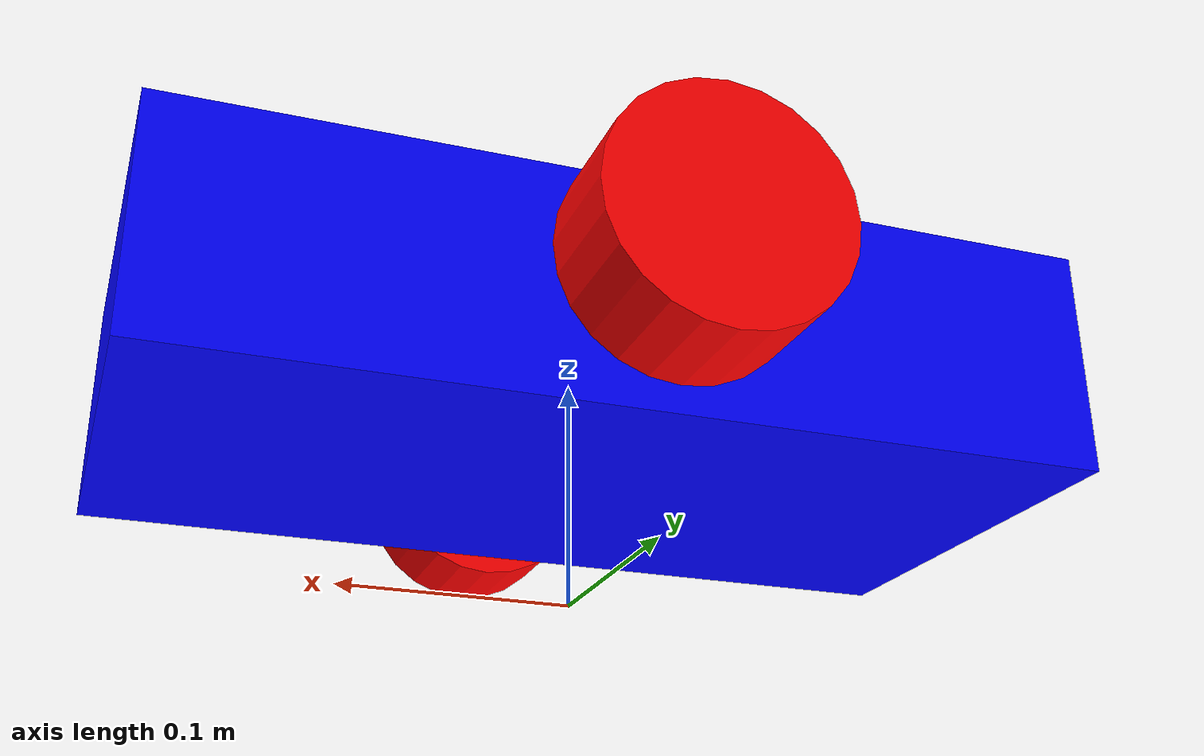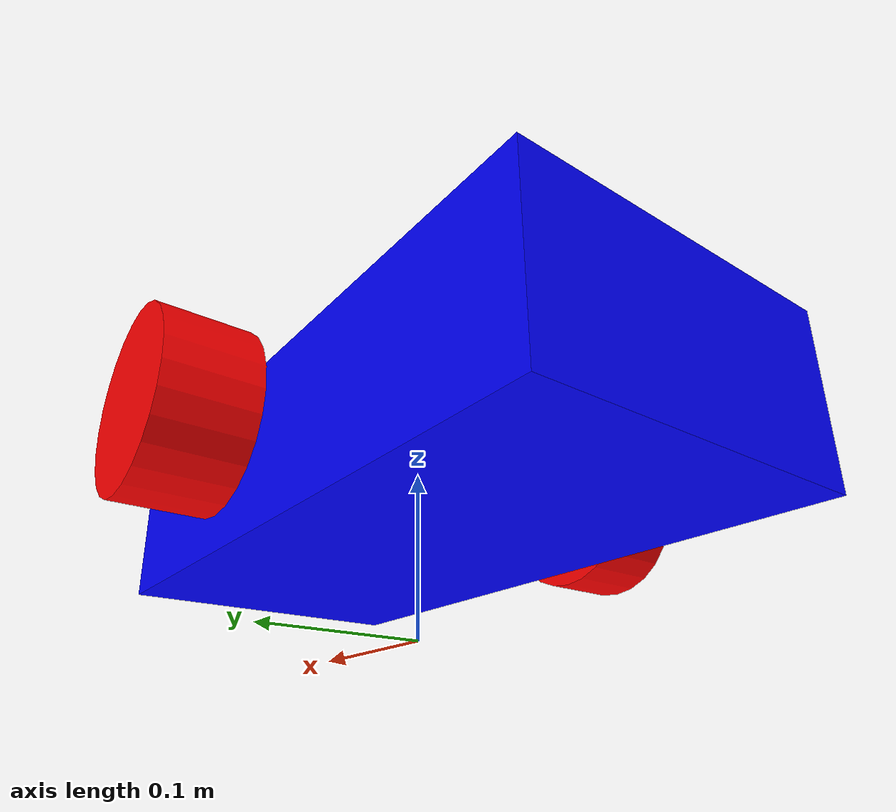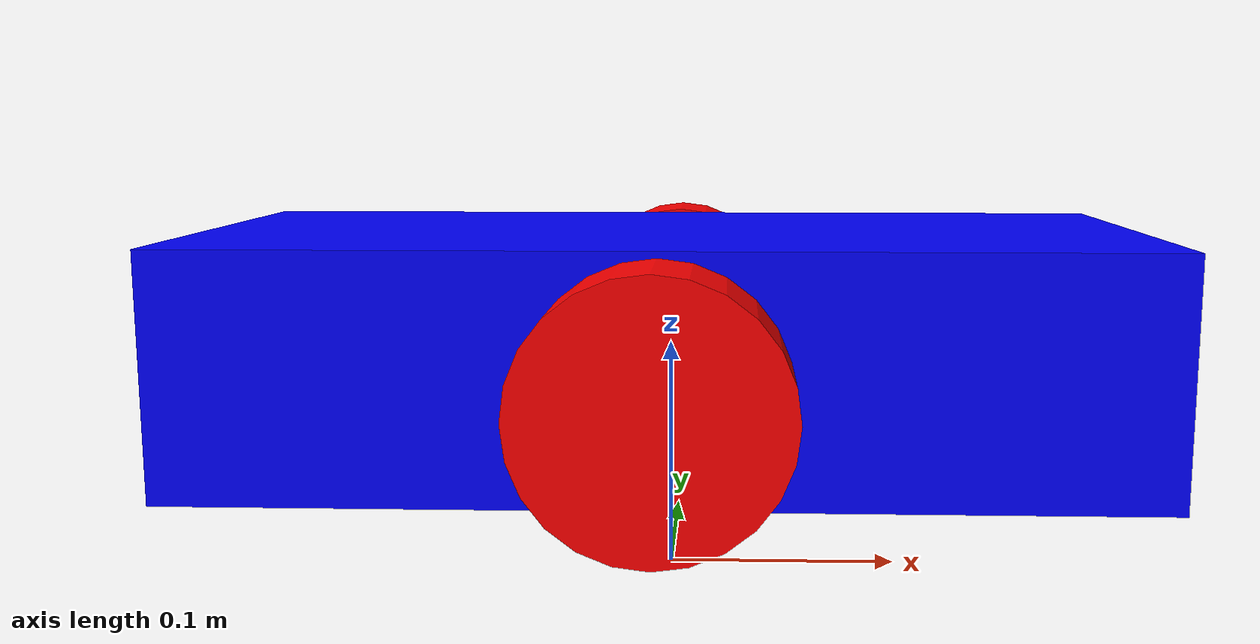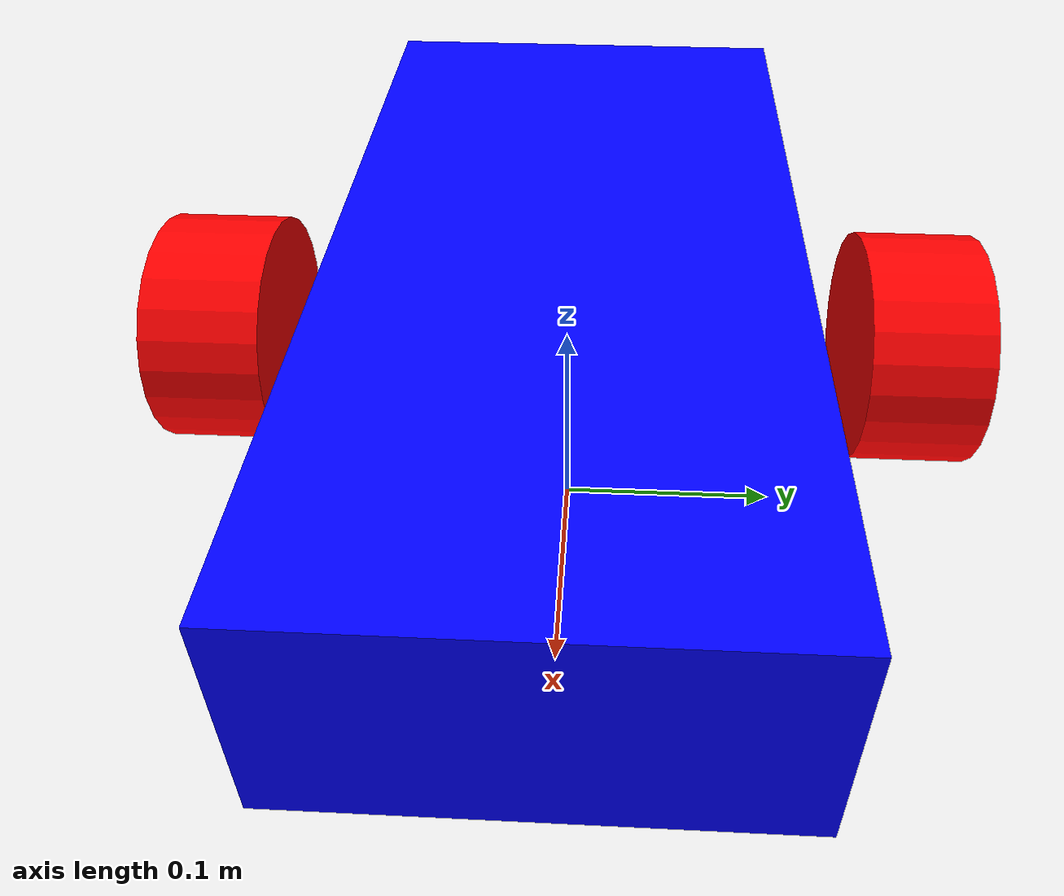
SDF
<?xml version="1.0" ?>
<sdf version="1.8">
  <model name="simple_robot">
    <pose>0 0 0.1 0 0 0</pose>

    <link name="base_link">
      <inertial>
        <mass>1.0</mass>
        <inertia>
          <ixx>0.1</ixx>
          <iyy>0.1</iyy>
          <izz>0.1</izz>
        </inertia>
      </inertial>

      <collision name="collision">
        <geometry>
          <box>
            <size>0.4 0.2 0.1</size>
          </box>
        </geometry>
      </collision>

      <visual name="visual">
        <geometry>
          <box>
            <size>0.4 0.2 0.1</size>
          </box>
        </geometry>
        <material>
          <ambient>0.0 0.0 1.0 1</ambient>
          <diffuse>0.0 0.0 1.0 1</diffuse>
        </material>
      </visual>
    </link>

    <link name="left_wheel">
      <pose>0 0.15 0 -1.5707 0 0</pose>
      <inertial>
        <mass>0.1</mass>
        <inertia>
          <ixx>0.01</ixx>
          <iyy>0.01</iyy>
          <izz>0.01</izz>
        </inertia>
      </inertial>

      <collision name="collision">
        <geometry>
          <cylinder>
            <radius>0.05</radius>
            <length>0.05</length>
          </cylinder>
        </geometry>
      </collision>

      <visual name="visual">
        <geometry>
          <cylinder>
            <radius>0.05</radius>
            <length>0.05</length>
          </cylinder>
        </geometry>
        <material>
          <ambient>1.0 0.0 0.0 1</ambient>
          <diffuse>1.0 0.0 0.0 1</diffuse>
        </material>
      </visual>
    </link>

    <link name="right_wheel">
      <pose>0 -0.15 0 -1.5707 0 0</pose>
      <inertial>
        <mass>0.1</mass>
        <inertia>
          <ixx>0.01</ixx>
          <iyy>0.01</iyy>
          <izz>0.01</izz>
        </inertia>
      </inertial>

      <collision name="collision">
        <geometry>
          <cylinder>
            <radius>0.05</radius>
            <length>0.05</length>
          </cylinder>
        </geometry>
      </collision>

      <visual name="visual">
        <geometry>
          <cylinder>
            <radius>0.05</radius>
            <length>0.05</length>
          </cylinder>
        </geometry>
        <material>
          <ambient>1.0 0.0 0.0 1</ambient>
          <diffuse>1.0 0.0 0.0 1</diffuse>
        </material>
      </visual>
    </link>

    <joint name="left_wheel_joint" type="revolute">
      <parent>base_link</parent>
      <child>left_wheel</child>
      <axis>
        <xyz>0 0 1</xyz>
      </axis>
    </joint>

    <joint name="right_wheel_joint" type="revolute">
      <parent>base_link</parent>
      <child>right_wheel</child>
      <axis>
        <xyz>0 0 1</xyz>
      </axis>
    </joint>

    <plugin filename="gz-sim-diff-drive-system" name="gz::sim::systems::DiffDrive">
      <left_joint>left_wheel_joint</left_joint>
      <right_joint>right_wheel_joint</right_joint>
      <wheel_separation>0.3</wheel_separation>
      <wheel_radius>0.05</wheel_radius>
      <odom_publish_frequency>50</odom_publish_frequency>
      <topic>cmd_vel</topic>
      <odom_topic>odom</odom_topic>
      <tf_topic>tf</tf_topic>
      <frame_id>odom</frame_id>
      <child_frame_id>base_link</child_frame_id>
    </plugin>
  </model>
</sdf>
